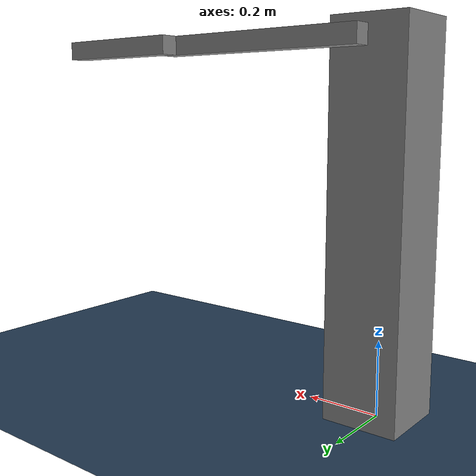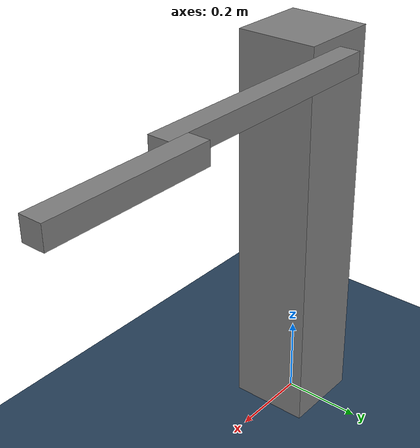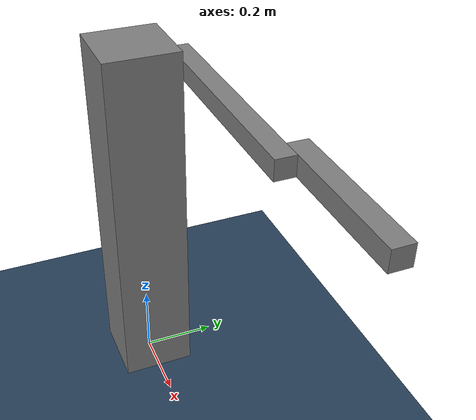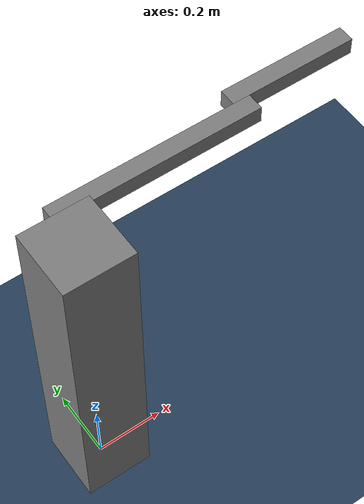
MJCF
<mujoco model="two_link scene">

    <include file="model.xml"/>

    <statistic center="0 -1 0.3" extent="2"/>

    <visual>
        <headlight diffuse="0.6 0.6 0.6" ambient="0.1 0.1 0.1" specular="0 0 0"/>
        <rgba haze="0.15 0.25 0.35 1"/>
        <global azimuth="-90" elevation="-20"/>
    </visual>

    <asset>
        <texture type="skybox" builtin="gradient" rgb1="0.3 0.5 0.7" rgb2="0 0 0" width="512" height="3072"/>
        <texture type="2d" name="groundplane" builtin="checker" mark="edge" rgb1="0.2 0.3 0.4" rgb2="0.1 0.2 0.3"
            markrgb="0.8 0.8 0.8" width="300" height="300"/>
        <material name="groundplane" texture="groundplane" texuniform="true" texrepeat="5 5" reflectance="0.2"/>
    </asset>

    <worldbody>
        <light pos="0 0 1.5" dir="0 0 -1" directional="true"/>
        <geom name="floor" size="0 0 0.05" type="plane" material="groundplane"/>
    </worldbody>

</mujoco>

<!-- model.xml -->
<mujoco model="two_link_manipulator">
    <compiler angle="radian" autolimits="true"/>

    <default>
        <default class="two_link_manipulator">
            <default class="visual">
                <geom type="mesh" contype="0" conaffinity="0" group="2"/>
            </default>
        </default>
    </default>

    <worldbody>
        <geom size="0.1 0.1 0.5" pos="0 0 0.5" type="box" class="visual"/>
        <body name="link1" pos="0 0.125 0.95" quat="0.707107 0 0.707107 0">
            <inertial pos="0 0 0.3" mass="1" diaginertia="1 1 1"/>
            <joint name="joint1" pos="0 0 0" axis="0 1 0" range="-1000 1000" damping="0" frictionloss="0"/>
            <geom size="0.025 0.025 0.3" pos="0 0 0.3" type="box" class="visual"/>
            <body name="link2" pos="0 0.05 0.575">
                <inertial pos="0 0 0.1625" mass="1" diaginertia="1 1 1"/>
                <joint name="joint2" pos="0 0 0" axis="0 1 0" range="-1000 1000" damping="0" frictionloss="0"/>
                <geom size="0.025 0.025 0.1875" pos="0 0 0.1625" type="box" class="visual"/>
            </body>
        </body>
    </worldbody>

    <actuator>
        <general name="upper" joint="joint1"/>
        <general name="lower" joint="joint2"/>
    </actuator>

</mujoco>
